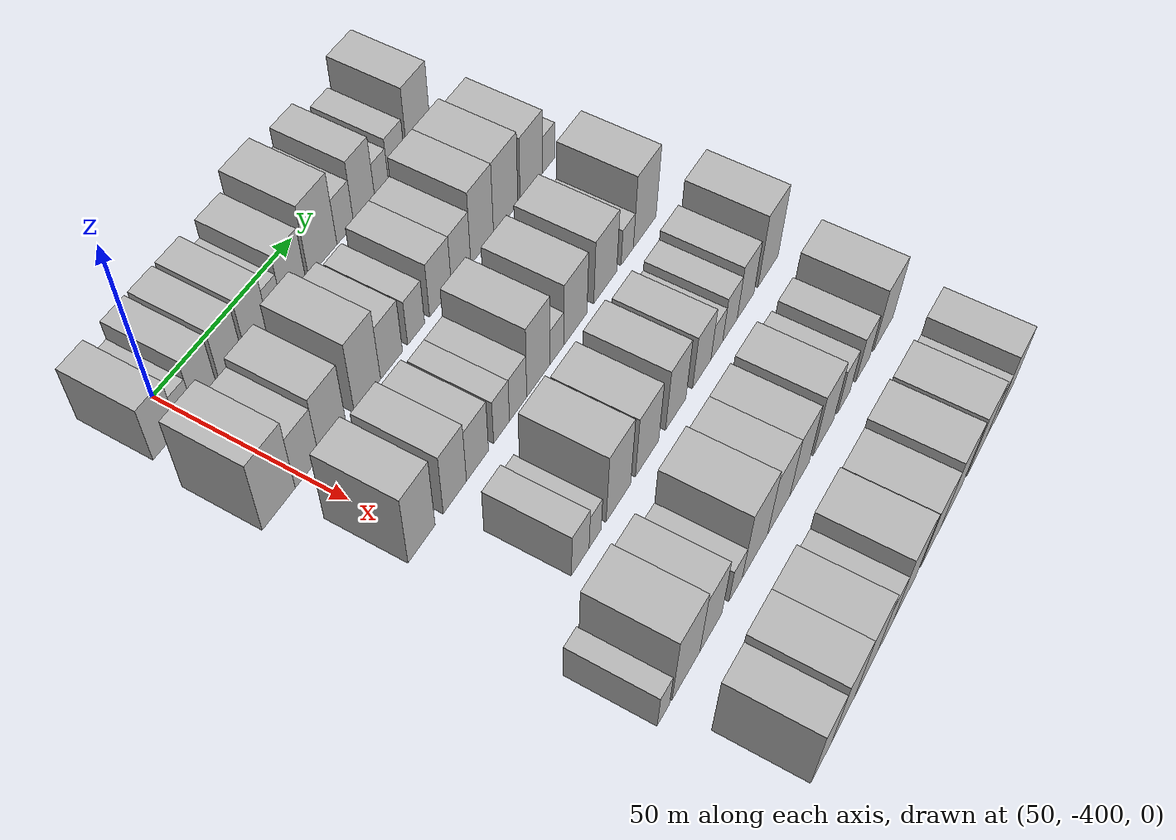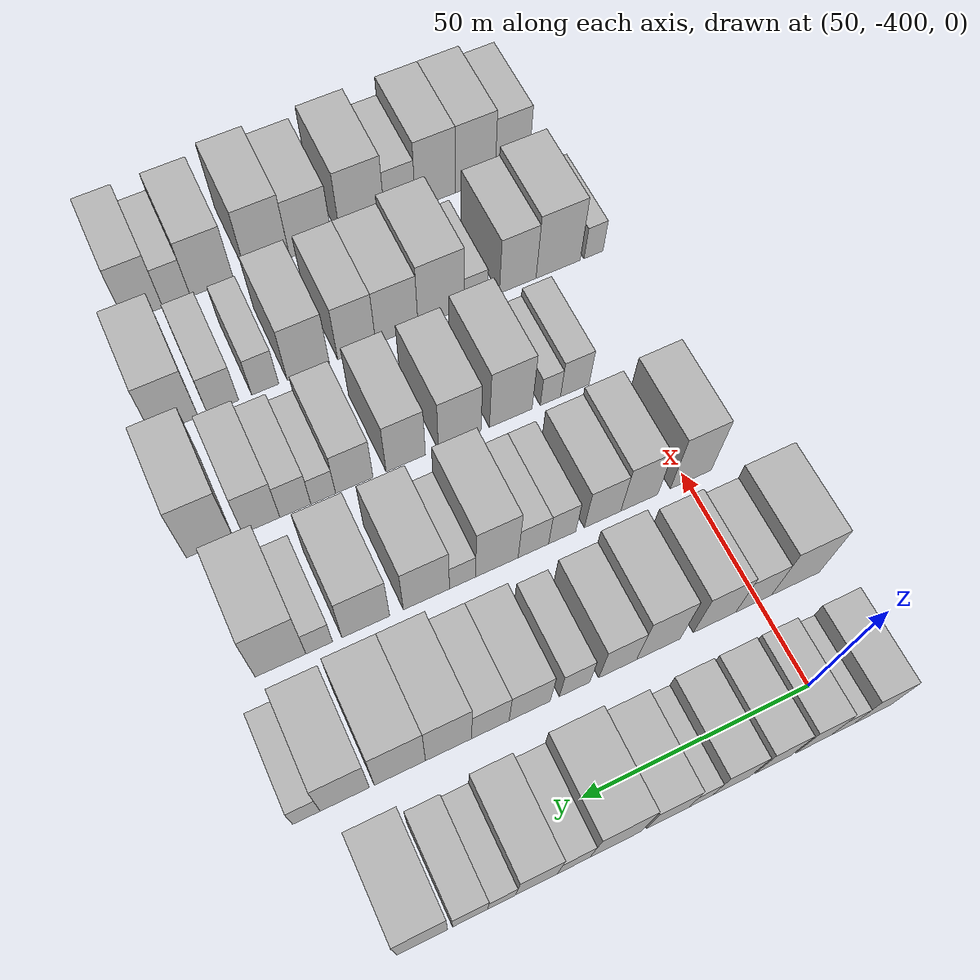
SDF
<sdf version="1.6">
 <world name="default">
  <model name="building_12">
   <static>1</static>
   <pose>50.0000 -408.1813 0 0.000000 0.000000 0.000000</pose>
   <link name="link">
    <pose>0 0 9.00 0 0 0</pose>
    <collision name="collision"><geometry><box><size>20.0000 8.3459 18.0000</size></box></geometry></collision>
    <visual name="visual">
     <cast_shadows>0</cast_shadows>
     <geometry><box><size>20.0000 8.3459 18.0000</size></box></geometry>
     <material>
      <script>
       <uri>model://HANNAS_wall/materials/scripts</uri>
       <uri>model://HANNAS_wall/materials/textures</uri>
       <name>vrc/HANNAS_wall</name>
      </script>
     </material>
    </visual>
   </link>
  </model>
  <model name="building_13">
   <static>1</static>
   <pose>50.0000 -401.3410 0 0.000000 0.000000 0.000000</pose>
   <link name="link">
    <pose>0 0 6.00 0 0 0</pose>
    <collision name="collision"><geometry><box><size>20.0000 5.3347 12.0000</size></box></geometry></collision>
    <visual name="visual">
     <cast_shadows>0</cast_shadows>
     <geometry><box><size>20.0000 5.3347 12.0000</size></box></geometry>
     <material>
      <script>
       <uri>model://HANNAS_wall/materials/scripts</uri>
       <uri>model://HANNAS_wall/materials/textures</uri>
       <name>vrc/HANNAS_wall</name>
      </script>
     </material>
    </visual>
   </link>
  </model>
  <model name="building_14">
   <static>1</static>
   <pose>50.0000 -394.7712 0 0.000000 0.000000 0.000000</pose>
   <link name="link">
    <pose>0 0 9.00 0 0 0</pose>
    <collision name="collision"><geometry><box><size>20.0000 7.8048 18.0000</size></box></geometry></collision>
    <visual name="visual">
     <cast_shadows>0</cast_shadows>
     <geometry><box><size>20.0000 7.8048 18.0000</size></box></geometry>
     <material>
      <script>
       <uri>model://HANNAS_wall/materials/scripts</uri>
       <uri>model://HANNAS_wall/materials/textures</uri>
       <name>vrc/HANNAS_wall</name>
      </script>
     </material>
    </visual>
   </link>
  </model>
  <model name="building_15">
   <static>1</static>
   <pose>50.0000 -385.8586 0 0.000000 0.000000 0.000000</pose>
   <link name="link">
    <pose>0 0 9.00 0 0 0</pose>
    <collision name="collision"><geometry><box><size>20.0000 8.0204 18.0000</size></box></geometry></collision>
    <visual name="visual">
     <cast_shadows>0</cast_shadows>
     <geometry><box><size>20.0000 8.0204 18.0000</size></box></geometry>
     <material>
      <script>
       <uri>model://HANNAS_wall/materials/scripts</uri>
       <uri>model://HANNAS_wall/materials/textures</uri>
       <name>vrc/HANNAS_wall</name>
      </script>
     </material>
    </visual>
   </link>
  </model>
  <model name="building_16">
   <static>1</static>
   <pose>50.0000 -376.7009 0 0.000000 0.000000 0.000000</pose>
   <link name="link">
    <pose>0 0 9.00 0 0 0</pose>
    <collision name="collision"><geometry><box><size>20.0000 8.2950 18.0000</size></box></geometry></collision>
    <visual name="visual">
     <cast_shadows>0</cast_shadows>
     <geometry><box><size>20.0000 8.2950 18.0000</size></box></geometry>
     <material>
      <script>
       <uri>model://HANNAS_wall/materials/scripts</uri>
       <uri>model://HANNAS_wall/materials/textures</uri>
       <name>vrc/HANNAS_wall</name>
      </script>
     </material>
    </visual>
   </link>
  </model>
  <model name="building_17">
   <static>1</static>
   <pose>50.0000 -369.9493 0 0.000000 0.000000 0.000000</pose>
   <link name="link">
    <pose>0 0 6.00 0 0 0</pose>
    <collision name="collision"><geometry><box><size>20.0000 5.2081 12.0000</size></box></geometry></collision>
    <visual name="visual">
     <cast_shadows>0</cast_shadows>
     <geometry><box><size>20.0000 5.2081 12.0000</size></box></geometry>
     <material>
      <script>
       <uri>model://HANNAS_wall/materials/scripts</uri>
       <uri>model://HANNAS_wall/materials/textures</uri>
       <name>vrc/HANNAS_wall</name>
      </script>
     </material>
    </visual>
   </link>
  </model>
  <model name="building_18">
   <static>1</static>
   <pose>50.0000 -362.8617 0 0.000000 0.000000 0.000000</pose>
   <link name="link">
    <pose>0 0 9.00 0 0 0</pose>
    <collision name="collision"><geometry><box><size>20.0000 8.9670 18.0000</size></box></geometry></collision>
    <visual name="visual">
     <cast_shadows>0</cast_shadows>
     <geometry><box><size>20.0000 8.9670 18.0000</size></box></geometry>
     <material>
      <script>
       <uri>model://HANNAS_wall/materials/scripts</uri>
       <uri>model://HANNAS_wall/materials/textures</uri>
       <name>vrc/HANNAS_wall</name>
      </script>
     </material>
    </visual>
   </link>
  </model>
  <model name="building_19">
   <static>1</static>
   <pose>50.0000 -351.8949 0 0.000000 0.000000 0.000000</pose>
   <link name="link">
    <pose>0 0 12.00 0 0 0</pose>
    <collision name="collision"><geometry><box><size>20.0000 10.9666 24.0000</size></box></geometry></collision>
    <visual name="visual">
     <cast_shadows>0</cast_shadows>
     <geometry><box><size>20.0000 10.9666 24.0000</size></box></geometry>
     <material>
      <script>
       <uri>model://HANNAS_wall/materials/scripts</uri>
       <uri>model://HANNAS_wall/materials/textures</uri>
       <name>vrc/HANNAS_wall</name>
      </script>
     </material>
    </visual>
   </link>
  </model>
  <model name="building_20">
   <static>1</static>
   <pose>50.0000 -343.0406 0 0.000000 0.000000 0.000000</pose>
   <link name="link">
    <pose>0 0 7.50 0 0 0</pose>
    <collision name="collision"><geometry><box><size>20.0000 6.7419 15.0000</size></box></geometry></collision>
    <visual name="visual">
     <cast_shadows>0</cast_shadows>
     <geometry><box><size>20.0000 6.7419 15.0000</size></box></geometry>
     <material>
      <script>
       <uri>model://HANNAS_wall/materials/scripts</uri>
       <uri>model://HANNAS_wall/materials/textures</uri>
       <name>vrc/HANNAS_wall</name>
      </script>
     </material>
    </visual>
   </link>
  </model>
  <model name="building_21">
   <static>1</static>
   <pose>50.0000 -335.3861 0 0.000000 0.000000 0.000000</pose>
   <link name="link">
    <pose>0 0 10.50 0 0 0</pose>
    <collision name="collision"><geometry><box><size>20.0000 8.5670 21.0000</size></box></geometry></collision>
    <visual name="visual">
     <cast_shadows>0</cast_shadows>
     <geometry><box><size>20.0000 8.5670 21.0000</size></box></geometry>
     <material>
      <script>
       <uri>model://HANNAS_wall/materials/scripts</uri>
       <uri>model://HANNAS_wall/materials/textures</uri>
       <name>vrc/HANNAS_wall</name>
      </script>
     </material>
    </visual>
   </link>
  </model>
  <model name="building_22">
   <static>1</static>
   <pose>50.0000 -328.2795 0 0.000000 0.000000 0.000000</pose>
   <link name="link">
    <pose>0 0 6.00 0 0 0</pose>
    <collision name="collision"><geometry><box><size>20.0000 5.6461 12.0000</size></box></geometry></collision>
    <visual name="visual">
     <cast_shadows>0</cast_shadows>
     <geometry><box><size>20.0000 5.6461 12.0000</size></box></geometry>
     <material>
      <script>
       <uri>model://HANNAS_wall/materials/scripts</uri>
       <uri>model://HANNAS_wall/materials/textures</uri>
       <name>vrc/HANNAS_wall</name>
      </script>
     </material>
    </visual>
   </link>
  </model>
  <model name="building_23">
   <static>1</static>
   <pose>50.0000 -321.9365 0 0.000000 0.000000 0.000000</pose>
   <link name="link">
    <pose>0 0 7.50 0 0 0</pose>
    <collision name="collision"><geometry><box><size>20.0000 7.0399 15.0000</size></box></geometry></collision>
    <visual name="visual">
     <cast_shadows>0</cast_shadows>
     <geometry><box><size>20.0000 7.0399 15.0000</size></box></geometry>
     <material>
      <script>
       <uri>model://HANNAS_wall/materials/scripts</uri>
       <uri>model://HANNAS_wall/materials/textures</uri>
       <name>vrc/HANNAS_wall</name>
      </script>
     </material>
    </visual>
   </link>
  </model>
  <model name="building_24">
   <static>1</static>
   <pose>50.0000 -312.4300 0 0.000000 0.000000 0.000000</pose>
   <link name="link">
    <pose>0 0 12.00 0 0 0</pose>
    <collision name="collision"><geometry><box><size>20.0000 9.9732 24.0000</size></box></geometry></collision>
    <visual name="visual">
     <cast_shadows>0</cast_shadows>
     <geometry><box><size>20.0000 9.9732 24.0000</size></box></geometry>
     <material>
      <script>
       <uri>model://HANNAS_wall/materials/scripts</uri>
       <uri>model://HANNAS_wall/materials/textures</uri>
       <name>vrc/HANNAS_wall</name>
      </script>
     </material>
    </visual>
   </link>
  </model>
  <model name="building_125">
   <static>1</static>
   <pose>79.0000 -408.7223 0 0.000000 0.000000 0.000000</pose>
   <link name="link">
    <pose>0 0 12.00 0 0 0</pose>
    <collision name="collision"><geometry><box><size>20.0000 11.2983 24.0000</size></box></geometry></collision>
    <visual name="visual">
     <cast_shadows>0</cast_shadows>
     <geometry><box><size>20.0000 11.2983 24.0000</size></box></geometry>
     <material>
      <script>
       <uri>model://HANNAS_wall/materials/scripts</uri>
       <uri>model://HANNAS_wall/materials/textures</uri>
       <name>vrc/HANNAS_wall</name>
      </script>
     </material>
    </visual>
   </link>
  </model>
  <model name="building_126">
   <static>1</static>
   <pose>79.0000 -398.9038 0 0.000000 0.000000 0.000000</pose>
   <link name="link">
    <pose>0 0 9.00 0 0 0</pose>
    <collision name="collision"><geometry><box><size>20.0000 8.3386 18.0000</size></box></geometry></collision>
    <visual name="visual">
     <cast_shadows>0</cast_shadows>
     <geometry><box><size>20.0000 8.3386 18.0000</size></box></geometry>
     <material>
      <script>
       <uri>model://HANNAS_wall/materials/scripts</uri>
       <uri>model://HANNAS_wall/materials/textures</uri>
       <name>vrc/HANNAS_wall</name>
      </script>
     </material>
    </visual>
   </link>
  </model>
  <model name="building_127">
   <static>1</static>
   <pose>79.0000 -389.8600 0 0.000000 0.000000 0.000000</pose>
   <link name="link">
    <pose>0 0 10.50 0 0 0</pose>
    <collision name="collision"><geometry><box><size>20.0000 9.7490 21.0000</size></box></geometry></collision>
    <visual name="visual">
     <cast_shadows>0</cast_shadows>
     <geometry><box><size>20.0000 9.7490 21.0000</size></box></geometry>
     <material>
      <script>
       <uri>model://HANNAS_wall/materials/scripts</uri>
       <uri>model://HANNAS_wall/materials/textures</uri>
       <name>vrc/HANNAS_wall</name>
      </script>
     </material>
    </visual>
   </link>
  </model>
  <model name="building_128">
   <static>1</static>
   <pose>79.0000 -377.0594 0 0.000000 0.000000 0.000000</pose>
   <link name="link">
    <pose>0 0 12.00 0 0 0</pose>
    <collision name="collision"><geometry><box><size>20.0000 9.8522 24.0000</size></box></geometry></collision>
    <visual name="visual">
     <cast_shadows>0</cast_shadows>
     <geometry><box><size>20.0000 9.8522 24.0000</size></box></geometry>
     <material>
      <script>
       <uri>model://HANNAS_wall/materials/scripts</uri>
       <uri>model://HANNAS_wall/materials/textures</uri>
       <name>vrc/HANNAS_wall</name>
      </script>
     </material>
    </visual>
   </link>
  </model>
  <model name="building_129">
   <static>1</static>
   <pose>79.0000 -367.9258 0 0.000000 0.000000 0.000000</pose>
   <link name="link">
    <pose>0 0 9.00 0 0 0</pose>
    <collision name="collision"><geometry><box><size>20.0000 8.4150 18.0000</size></box></geometry></collision>
    <visual name="visual">
     <cast_shadows>0</cast_shadows>
     <geometry><box><size>20.0000 8.4150 18.0000</size></box></geometry>
     <material>
      <script>
       <uri>model://HANNAS_wall/materials/scripts</uri>
       <uri>model://HANNAS_wall/materials/textures</uri>
       <name>vrc/HANNAS_wall</name>
      </script>
     </material>
    </visual>
   </link>
  </model>
  <model name="building_130">
   <static>1</static>
   <pose>79.0000 -358.3705 0 0.000000 0.000000 0.000000</pose>
   <link name="link">
    <pose>0 0 7.50 0 0 0</pose>
    <collision name="collision"><geometry><box><size>20.0000 6.6957 15.0000</size></box></geometry></collision>
    <visual name="visual">
     <cast_shadows>0</cast_shadows>
     <geometry><box><size>20.0000 6.6957 15.0000</size></box></geometry>
     <material>
      <script>
       <uri>model://HANNAS_wall/materials/scripts</uri>
       <uri>model://HANNAS_wall/materials/textures</uri>
       <name>vrc/HANNAS_wall</name>
      </script>
     </material>
    </visual>
   </link>
  </model>
  <model name="building_131">
   <static>1</static>
   <pose>79.0000 -348.5565 0 0.000000 0.000000 0.000000</pose>
   <link name="link">
    <pose>0 0 9.00 0 0 0</pose>
    <collision name="collision"><geometry><box><size>20.0000 8.9323 18.0000</size></box></geometry></collision>
    <visual name="visual">
     <cast_shadows>0</cast_shadows>
     <geometry><box><size>20.0000 8.9323 18.0000</size></box></geometry>
     <material>
      <script>
       <uri>model://HANNAS_wall/materials/scripts</uri>
       <uri>model://HANNAS_wall/materials/textures</uri>
       <name>vrc/HANNAS_wall</name>
      </script>
     </material>
    </visual>
   </link>
  </model>
  <model name="building_132">
   <static>1</static>
   <pose>79.0000 -340.0822 0 0.000000 0.000000 0.000000</pose>
   <link name="link">
    <pose>0 0 9.00 0 0 0</pose>
    <collision name="collision"><geometry><box><size>20.0000 8.0163 18.0000</size></box></geometry></collision>
    <visual name="visual">
     <cast_shadows>0</cast_shadows>
     <geometry><box><size>20.0000 8.0163 18.0000</size></box></geometry>
     <material>
      <script>
       <uri>model://HANNAS_wall/materials/scripts</uri>
       <uri>model://HANNAS_wall/materials/textures</uri>
       <name>vrc/HANNAS_wall</name>
      </script>
     </material>
    </visual>
   </link>
  </model>
  <model name="building_133">
   <static>1</static>
   <pose>79.0000 -331.2280 0 0.000000 0.000000 0.000000</pose>
   <link name="link">
    <pose>0 0 12.00 0 0 0</pose>
    <collision name="collision"><geometry><box><size>20.0000 9.6919 24.0000</size></box></geometry></collision>
    <visual name="visual">
     <cast_shadows>0</cast_shadows>
     <geometry><box><size>20.0000 9.6919 24.0000</size></box></geometry>
     <material>
      <script>
       <uri>model://HANNAS_wall/materials/scripts</uri>
       <uri>model://HANNAS_wall/materials/textures</uri>
       <name>vrc/HANNAS_wall</name>
      </script>
     </material>
    </visual>
   </link>
  </model>
  <model name="building_134">
   <static>1</static>
   <pose>79.0000 -321.0541 0 0.000000 0.000000 0.000000</pose>
   <link name="link">
    <pose>0 0 12.00 0 0 0</pose>
    <collision name="collision"><geometry><box><size>20.0000 10.6560 24.0000</size></box></geometry></collision>
    <visual name="visual">
     <cast_shadows>0</cast_shadows>
     <geometry><box><size>20.0000 10.6560 24.0000</size></box></geometry>
     <material>
      <script>
       <uri>model://HANNAS_wall/materials/scripts</uri>
       <uri>model://HANNAS_wall/materials/textures</uri>
       <name>vrc/HANNAS_wall</name>
      </script>
     </material>
    </visual>
   </link>
  </model>
  <model name="building_135">
   <static>1</static>
   <pose>79.0000 -309.6867 0 0.000000 0.000000 0.000000</pose>
   <link name="link">
    <pose>0 0 10.50 0 0 0</pose>
    <collision name="collision"><geometry><box><size>20.0000 10.0787 21.0000</size></box></geometry></collision>
    <visual name="visual">
     <cast_shadows>0</cast_shadows>
     <geometry><box><size>20.0000 10.0787 21.0000</size></box></geometry>
     <material>
      <script>
       <uri>model://HANNAS_wall/materials/scripts</uri>
       <uri>model://HANNAS_wall/materials/textures</uri>
       <name>vrc/HANNAS_wall</name>
      </script>
     </material>
    </visual>
   </link>
  </model>
  <model name="building_136">
   <static>1</static>
   <pose>79.0000 -301.8614 0 0.000000 0.000000 0.000000</pose>
   <link name="link">
    <pose>0 0 6.00 0 0 0</pose>
    <collision name="collision"><geometry><box><size>20.0000 5.5719 12.0000</size></box></geometry></collision>
    <visual name="visual">
     <cast_shadows>0</cast_shadows>
     <geometry><box><size>20.0000 5.5719 12.0000</size></box></geometry>
     <material>
      <script>
       <uri>model://HANNAS_wall/materials/scripts</uri>
       <uri>model://HANNAS_wall/materials/textures</uri>
       <name>vrc/HANNAS_wall</name>
      </script>
     </material>
    </visual>
   </link>
  </model>
  <model name="building_237">
   <static>1</static>
   <pose>108.0000 -400.9648 0 0.000000 0.000000 0.000000</pose>
   <link name="link">
    <pose>0 0 12.00 0 0 0</pose>
    <collision name="collision"><geometry><box><size>20.0000 9.8515 24.0000</size></box></geometry></collision>
    <visual name="visual">
     <cast_shadows>0</cast_shadows>
     <geometry><box><size>20.0000 9.8515 24.0000</size></box></geometry>
     <material>
      <script>
       <uri>model://HANNAS_wall/materials/scripts</uri>
       <uri>model://HANNAS_wall/materials/textures</uri>
       <name>vrc/HANNAS_wall</name>
      </script>
     </material>
    </visual>
   </link>
  </model>
  <model name="building_238">
   <static>1</static>
   <pose>108.0000 -388.6514 0 0.000000 0.000000 0.000000</pose>
   <link name="link">
    <pose>0 0 10.50 0 0 0</pose>
    <collision name="collision"><geometry><box><size>20.0000 8.7754 21.0000</size></box></geometry></collision>
    <visual name="visual">
     <cast_shadows>0</cast_shadows>
     <geometry><box><size>20.0000 8.7754 21.0000</size></box></geometry>
     <material>
      <script>
       <uri>model://HANNAS_wall/materials/scripts</uri>
       <uri>model://HANNAS_wall/materials/textures</uri>
       <name>vrc/HANNAS_wall</name>
      </script>
     </material>
    </visual>
   </link>
  </model>
  <model name="building_239">
   <static>1</static>
   <pose>108.0000 -380.0092 0 0.000000 0.000000 0.000000</pose>
   <link name="link">
    <pose>0 0 9.00 0 0 0</pose>
    <collision name="collision"><geometry><box><size>20.0000 8.5089 18.0000</size></box></geometry></collision>
    <visual name="visual">
     <cast_shadows>0</cast_shadows>
     <geometry><box><size>20.0000 8.5089 18.0000</size></box></geometry>
     <material>
      <script>
       <uri>model://HANNAS_wall/materials/scripts</uri>
       <uri>model://HANNAS_wall/materials/textures</uri>
       <name>vrc/HANNAS_wall</name>
      </script>
     </material>
    </visual>
   </link>
  </model>
  <model name="building_240">
   <static>1</static>
   <pose>108.0000 -370.6069 0 0.000000 0.000000 0.000000</pose>
   <link name="link">
    <pose>0 0 7.50 0 0 0</pose>
    <collision name="collision"><geometry><box><size>20.0000 6.2959 15.0000</size></box></geometry></collision>
    <visual name="visual">
     <cast_shadows>0</cast_shadows>
     <geometry><box><size>20.0000 6.2959 15.0000</size></box></geometry>
     <material>
      <script>
       <uri>model://HANNAS_wall/materials/scripts</uri>
       <uri>model://HANNAS_wall/materials/textures</uri>
       <name>vrc/HANNAS_wall</name>
      </script>
     </material>
    </visual>
   </link>
  </model>
  <model name="building_241">
   <static>1</static>
   <pose>108.0000 -363.9715 0 0.000000 0.000000 0.000000</pose>
   <link name="link">
    <pose>0 0 7.50 0 0 0</pose>
    <collision name="collision"><geometry><box><size>20.0000 6.9749 15.0000</size></box></geometry></collision>
    <visual name="visual">
     <cast_shadows>0</cast_shadows>
     <geometry><box><size>20.0000 6.9749 15.0000</size></box></geometry>
     <material>
      <script>
       <uri>model://HANNAS_wall/materials/scripts</uri>
       <uri>model://HANNAS_wall/materials/textures</uri>
       <name>vrc/HANNAS_wall</name>
      </script>
     </material>
    </visual>
   </link>
  </model>
  <model name="building_242">
   <static>1</static>
   <pose>108.0000 -355.6489 0 0.000000 0.000000 0.000000</pose>
   <link name="link">
    <pose>0 0 12.00 0 0 0</pose>
    <collision name="collision"><geometry><box><size>20.0000 9.6704 24.0000</size></box></geometry></collision>
    <visual name="visual">
     <cast_shadows>0</cast_shadows>
     <geometry><box><size>20.0000 9.6704 24.0000</size></box></geometry>
     <material>
      <script>
       <uri>model://HANNAS_wall/materials/scripts</uri>
       <uri>model://HANNAS_wall/materials/textures</uri>
       <name>vrc/HANNAS_wall</name>
      </script>
     </material>
    </visual>
   </link>
  </model>
  <model name="building_243">
   <static>1</static>
   <pose>108.0000 -347.9150 0 0.000000 0.000000 0.000000</pose>
   <link name="link">
    <pose>0 0 6.00 0 0 0</pose>
    <collision name="collision"><geometry><box><size>20.0000 5.7973 12.0000</size></box></geometry></collision>
    <visual name="visual">
     <cast_shadows>0</cast_shadows>
     <geometry><box><size>20.0000 5.7973 12.0000</size></box></geometry>
     <material>
      <script>
       <uri>model://HANNAS_wall/materials/scripts</uri>
       <uri>model://HANNAS_wall/materials/textures</uri>
       <name>vrc/HANNAS_wall</name>
      </script>
     </material>
    </visual>
   </link>
  </model>
  <model name="building_244">
   <static>1</static>
   <pose>108.0000 -339.9219 0 0.000000 0.000000 0.000000</pose>
   <link name="link">
    <pose>0 0 10.50 0 0 0</pose>
    <collision name="collision"><geometry><box><size>20.0000 10.1889 21.0000</size></box></geometry></collision>
    <visual name="visual">
     <cast_shadows>0</cast_shadows>
     <geometry><box><size>20.0000 10.1889 21.0000</size></box></geometry>
     <material>
      <script>
       <uri>model://HANNAS_wall/materials/scripts</uri>
       <uri>model://HANNAS_wall/materials/textures</uri>
       <name>vrc/HANNAS_wall</name>
      </script>
     </material>
    </visual>
   </link>
  </model>
  <model name="building_245">
   <static>1</static>
   <pose>108.0000 -326.6352 0 0.000000 0.000000 0.000000</pose>
   <link name="link">
    <pose>0 0 10.50 0 0 0</pose>
    <collision name="collision"><geometry><box><size>20.0000 10.3846 21.0000</size></box></geometry></collision>
    <visual name="visual">
     <cast_shadows>0</cast_shadows>
     <geometry><box><size>20.0000 10.3846 21.0000</size></box></geometry>
     <material>
      <script>
       <uri>model://HANNAS_wall/materials/scripts</uri>
       <uri>model://HANNAS_wall/materials/textures</uri>
       <name>vrc/HANNAS_wall</name>
      </script>
     </material>
    </visual>
   </link>
  </model>
  <model name="building_246">
   <static>1</static>
   <pose>108.0000 -316.5867 0 0.000000 0.000000 0.000000</pose>
   <link name="link">
    <pose>0 0 6.00 0 0 0</pose>
    <collision name="collision"><geometry><box><size>20.0000 5.7122 12.0000</size></box></geometry></collision>
    <visual name="visual">
     <cast_shadows>0</cast_shadows>
     <geometry><box><size>20.0000 5.7122 12.0000</size></box></geometry>
     <material>
      <script>
       <uri>model://HANNAS_wall/materials/scripts</uri>
       <uri>model://HANNAS_wall/materials/textures</uri>
       <name>vrc/HANNAS_wall</name>
      </script>
     </material>
    </visual>
   </link>
  </model>
  <model name="building_247">
   <static>1</static>
   <pose>108.0000 -308.3567 0 0.000000 0.000000 0.000000</pose>
   <link name="link">
    <pose>0 0 12.00 0 0 0</pose>
    <collision name="collision"><geometry><box><size>20.0000 10.7478 24.0000</size></box></geometry></collision>
    <visual name="visual">
     <cast_shadows>0</cast_shadows>
     <geometry><box><size>20.0000 10.7478 24.0000</size></box></geometry>
     <material>
      <script>
       <uri>model://HANNAS_wall/materials/scripts</uri>
       <uri>model://HANNAS_wall/materials/textures</uri>
       <name>vrc/HANNAS_wall</name>
      </script>
     </material>
    </visual>
   </link>
  </model>
  <model name="building_348">
   <static>1</static>
   <pose>137.0000 -388.6480 0 0.000000 0.000000 0.000000</pose>
   <link name="link">
    <pose>0 0 7.50 0 0 0</pose>
    <collision name="collision"><geometry><box><size>20.0000 6.9979 15.0000</size></box></geometry></collision>
    <visual name="visual">
     <cast_shadows>0</cast_shadows>
     <geometry><box><size>20.0000 6.9979 15.0000</size></box></geometry>
     <material>
      <script>
       <uri>model://HANNAS_wall/materials/scripts</uri>
       <uri>model://HANNAS_wall/materials/textures</uri>
       <name>vrc/HANNAS_wall</name>
      </script>
     </material>
    </visual>
   </link>
  </model>
  <model name="building_349">
   <static>1</static>
   <pose>137.0000 -382.7102 0 0.000000 0.000000 0.000000</pose>
   <link name="link">
    <pose>0 0 6.00 0 0 0</pose>
    <collision name="collision"><geometry><box><size>20.0000 4.8775 12.0000</size></box></geometry></collision>
    <visual name="visual">
     <cast_shadows>0</cast_shadows>
     <geometry><box><size>20.0000 4.8775 12.0000</size></box></geometry>
     <material>
      <script>
       <uri>model://HANNAS_wall/materials/scripts</uri>
       <uri>model://HANNAS_wall/materials/textures</uri>
       <name>vrc/HANNAS_wall</name>
      </script>
     </material>
    </visual>
   </link>
  </model>
  <model name="building_350">
   <static>1</static>
   <pose>137.0000 -373.1692 0 0.000000 0.000000 0.000000</pose>
   <link name="link">
    <pose>0 0 12.00 0 0 0</pose>
    <collision name="collision"><geometry><box><size>20.0000 10.2045 24.0000</size></box></geometry></collision>
    <visual name="visual">
     <cast_shadows>0</cast_shadows>
     <geometry><box><size>20.0000 10.2045 24.0000</size></box></geometry>
     <material>
      <script>
       <uri>model://HANNAS_wall/materials/scripts</uri>
       <uri>model://HANNAS_wall/materials/textures</uri>
       <name>vrc/HANNAS_wall</name>
      </script>
     </material>
    </visual>
   </link>
  </model>
  <model name="building_351">
   <static>1</static>
   <pose>137.0000 -361.0492 0 0.000000 0.000000 0.000000</pose>
   <link name="link">
    <pose>0 0 10.50 0 0 0</pose>
    <collision name="collision"><geometry><box><size>20.0000 10.0356 21.0000</size></box></geometry></collision>
    <visual name="visual">
     <cast_shadows>0</cast_shadows>
     <geometry><box><size>20.0000 10.0356 21.0000</size></box></geometry>
     <material>
      <script>
       <uri>model://HANNAS_wall/materials/scripts</uri>
       <uri>model://HANNAS_wall/materials/textures</uri>
       <name>vrc/HANNAS_wall</name>
      </script>
     </material>
    </visual>
   </link>
  </model>
  <model name="building_352">
   <static>1</static>
   <pose>137.0000 -348.4777 0 0.000000 0.000000 0.000000</pose>
   <link name="link">
    <pose>0 0 10.50 0 0 0</pose>
    <collision name="collision"><geometry><box><size>20.0000 9.1074 21.0000</size></box></geometry></collision>
    <visual name="visual">
     <cast_shadows>0</cast_shadows>
     <geometry><box><size>20.0000 9.1074 21.0000</size></box></geometry>
     <material>
      <script>
       <uri>model://HANNAS_wall/materials/scripts</uri>
       <uri>model://HANNAS_wall/materials/textures</uri>
       <name>vrc/HANNAS_wall</name>
      </script>
     </material>
    </visual>
   </link>
  </model>
  <model name="building_353">
   <static>1</static>
   <pose>137.0000 -336.6565 0 0.000000 0.000000 0.000000</pose>
   <link name="link">
    <pose>0 0 9.00 0 0 0</pose>
    <collision name="collision"><geometry><box><size>20.0000 8.5350 18.0000</size></box></geometry></collision>
    <visual name="visual">
     <cast_shadows>0</cast_shadows>
     <geometry><box><size>20.0000 8.5350 18.0000</size></box></geometry>
     <material>
      <script>
       <uri>model://HANNAS_wall/materials/scripts</uri>
       <uri>model://HANNAS_wall/materials/textures</uri>
       <name>vrc/HANNAS_wall</name>
      </script>
     </material>
    </visual>
   </link>
  </model>
  <model name="building_354">
   <static>1</static>
   <pose>137.0000 -329.5993 0 0.000000 0.000000 0.000000</pose>
   <link name="link">
    <pose>0 0 6.00 0 0 0</pose>
    <collision name="collision"><geometry><box><size>20.0000 5.5795 12.0000</size></box></geometry></collision>
    <visual name="visual">
     <cast_shadows>0</cast_shadows>
     <geometry><box><size>20.0000 5.5795 12.0000</size></box></geometry>
     <material>
      <script>
       <uri>model://HANNAS_wall/materials/scripts</uri>
       <uri>model://HANNAS_wall/materials/textures</uri>
       <name>vrc/HANNAS_wall</name>
      </script>
     </material>
    </visual>
   </link>
  </model>
  <model name="building_355">
   <static>1</static>
   <pose>137.0000 -323.3493 0 0.000000 0.000000 0.000000</pose>
   <link name="link">
    <pose>0 0 7.50 0 0 0</pose>
    <collision name="collision"><geometry><box><size>20.0000 6.9205 15.0000</size></box></geometry></collision>
    <visual name="visual">
     <cast_shadows>0</cast_shadows>
     <geometry><box><size>20.0000 6.9205 15.0000</size></box></geometry>
     <material>
      <script>
       <uri>model://HANNAS_wall/materials/scripts</uri>
       <uri>model://HANNAS_wall/materials/textures</uri>
       <name>vrc/HANNAS_wall</name>
      </script>
     </material>
    </visual>
   </link>
  </model>
  <model name="building_356">
   <static>1</static>
   <pose>137.0000 -315.7426 0 0.000000 0.000000 0.000000</pose>
   <link name="link">
    <pose>0 0 9.00 0 0 0</pose>
    <collision name="collision"><geometry><box><size>20.0000 8.2930 18.0000</size></box></geometry></collision>
    <visual name="visual">
     <cast_shadows>0</cast_shadows>
     <geometry><box><size>20.0000 8.2930 18.0000</size></box></geometry>
     <material>
      <script>
       <uri>model://HANNAS_wall/materials/scripts</uri>
       <uri>model://HANNAS_wall/materials/textures</uri>
       <name>vrc/HANNAS_wall</name>
      </script>
     </material>
    </visual>
   </link>
  </model>
  <model name="building_357">
   <static>1</static>
   <pose>137.0000 -304.4735 0 0.000000 0.000000 0.000000</pose>
   <link name="link">
    <pose>0 0 12.00 0 0 0</pose>
    <collision name="collision"><geometry><box><size>20.0000 10.2454 24.0000</size></box></geometry></collision>
    <visual name="visual">
     <cast_shadows>0</cast_shadows>
     <geometry><box><size>20.0000 10.2454 24.0000</size></box></geometry>
     <material>
      <script>
       <uri>model://HANNAS_wall/materials/scripts</uri>
       <uri>model://HANNAS_wall/materials/textures</uri>
       <name>vrc/HANNAS_wall</name>
      </script>
     </material>
    </visual>
   </link>
  </model>
  <model name="building_461">
   <static>1</static>
   <pose>166.0000 -408.5825 0 0.000000 0.000000 0.000000</pose>
   <link name="link">
    <pose>0 0 6.00 0 0 0</pose>
    <collision name="collision"><geometry><box><size>20.0000 4.8622 12.0000</size></box></geometry></collision>
    <visual name="visual">
     <cast_shadows>0</cast_shadows>
     <geometry><box><size>20.0000 4.8622 12.0000</size></box></geometry>
     <material>
      <script>
       <uri>model://HANNAS_wall/materials/scripts</uri>
       <uri>model://HANNAS_wall/materials/textures</uri>
       <name>vrc/HANNAS_wall</name>
      </script>
     </material>
    </visual>
   </link>
  </model>
  <model name="building_462">
   <static>1</static>
   <pose>166.0000 -399.5165 0 0.000000 0.000000 0.000000</pose>
   <link name="link">
    <pose>0 0 12.00 0 0 0</pose>
    <collision name="collision"><geometry><box><size>20.0000 11.2697 24.0000</size></box></geometry></collision>
    <visual name="visual">
     <cast_shadows>0</cast_shadows>
     <geometry><box><size>20.0000 11.2697 24.0000</size></box></geometry>
     <material>
      <script>
       <uri>model://HANNAS_wall/materials/scripts</uri>
       <uri>model://HANNAS_wall/materials/textures</uri>
       <name>vrc/HANNAS_wall</name>
      </script>
     </material>
    </visual>
   </link>
  </model>
  <model name="building_463">
   <static>1</static>
   <pose>166.0000 -389.2660 0 0.000000 0.000000 0.000000</pose>
   <link name="link">
    <pose>0 0 10.50 0 0 0</pose>
    <collision name="collision"><geometry><box><size>20.0000 9.2314 21.0000</size></box></geometry></collision>
    <visual name="visual">
     <cast_shadows>0</cast_shadows>
     <geometry><box><size>20.0000 9.2314 21.0000</size></box></geometry>
     <material>
      <script>
       <uri>model://HANNAS_wall/materials/scripts</uri>
       <uri>model://HANNAS_wall/materials/textures</uri>
       <name>vrc/HANNAS_wall</name>
      </script>
     </material>
    </visual>
   </link>
  </model>
  <model name="building_464">
   <static>1</static>
   <pose>166.0000 -378.7809 0 0.000000 0.000000 0.000000</pose>
   <link name="link">
    <pose>0 0 6.00 0 0 0</pose>
    <collision name="collision"><geometry><box><size>20.0000 5.7388 12.0000</size></box></geometry></collision>
    <visual name="visual">
     <cast_shadows>0</cast_shadows>
     <geometry><box><size>20.0000 5.7388 12.0000</size></box></geometry>
     <material>
      <script>
       <uri>model://HANNAS_wall/materials/scripts</uri>
       <uri>model://HANNAS_wall/materials/textures</uri>
       <name>vrc/HANNAS_wall</name>
      </script>
     </material>
    </visual>
   </link>
  </model>
  <model name="building_465">
   <static>1</static>
   <pose>166.0000 -370.2418 0 0.000000 0.000000 0.000000</pose>
   <link name="link">
    <pose>0 0 12.00 0 0 0</pose>
    <collision name="collision"><geometry><box><size>20.0000 11.3394 24.0000</size></box></geometry></collision>
    <visual name="visual">
     <cast_shadows>0</cast_shadows>
     <geometry><box><size>20.0000 11.3394 24.0000</size></box></geometry>
     <material>
      <script>
       <uri>model://HANNAS_wall/materials/scripts</uri>
       <uri>model://HANNAS_wall/materials/textures</uri>
       <name>vrc/HANNAS_wall</name>
      </script>
     </material>
    </visual>
   </link>
  </model>
  <model name="building_466">
   <static>1</static>
   <pose>166.0000 -359.4437 0 0.000000 0.000000 0.000000</pose>
   <link name="link">
    <pose>0 0 10.50 0 0 0</pose>
    <collision name="collision"><geometry><box><size>20.0000 10.2569 21.0000</size></box></geometry></collision>
    <visual name="visual">
     <cast_shadows>0</cast_shadows>
     <geometry><box><size>20.0000 10.2569 21.0000</size></box></geometry>
     <material>
      <script>
       <uri>model://HANNAS_wall/materials/scripts</uri>
       <uri>model://HANNAS_wall/materials/textures</uri>
       <name>vrc/HANNAS_wall</name>
      </script>
     </material>
    </visual>
   </link>
  </model>
  <model name="building_467">
   <static>1</static>
   <pose>166.0000 -349.7670 0 0.000000 0.000000 0.000000</pose>
   <link name="link">
    <pose>0 0 10.50 0 0 0</pose>
    <collision name="collision"><geometry><box><size>20.0000 9.0964 21.0000</size></box></geometry></collision>
    <visual name="visual">
     <cast_shadows>0</cast_shadows>
     <geometry><box><size>20.0000 9.0964 21.0000</size></box></geometry>
     <material>
      <script>
       <uri>model://HANNAS_wall/materials/scripts</uri>
       <uri>model://HANNAS_wall/materials/textures</uri>
       <name>vrc/HANNAS_wall</name>
      </script>
     </material>
    </visual>
   </link>
  </model>
  <model name="building_468">
   <static>1</static>
   <pose>166.0000 -338.2564 0 0.000000 0.000000 0.000000</pose>
   <link name="link">
    <pose>0 0 10.50 0 0 0</pose>
    <collision name="collision"><geometry><box><size>20.0000 9.9249 21.0000</size></box></geometry></collision>
    <visual name="visual">
     <cast_shadows>0</cast_shadows>
     <geometry><box><size>20.0000 9.9249 21.0000</size></box></geometry>
     <material>
      <script>
       <uri>model://HANNAS_wall/materials/scripts</uri>
       <uri>model://HANNAS_wall/materials/textures</uri>
       <name>vrc/HANNAS_wall</name>
      </script>
     </material>
    </visual>
   </link>
  </model>
  <model name="building_469">
   <static>1</static>
   <pose>166.0000 -328.1408 0 0.000000 0.000000 0.000000</pose>
   <link name="link">
    <pose>0 0 7.50 0 0 0</pose>
    <collision name="collision"><geometry><box><size>20.0000 6.3064 15.0000</size></box></geometry></collision>
    <visual name="visual">
     <cast_shadows>0</cast_shadows>
     <geometry><box><size>20.0000 6.3064 15.0000</size></box></geometry>
     <material>
      <script>
       <uri>model://HANNAS_wall/materials/scripts</uri>
       <uri>model://HANNAS_wall/materials/textures</uri>
       <name>vrc/HANNAS_wall</name>
      </script>
     </material>
    </visual>
   </link>
  </model>
  <model name="building_470">
   <static>1</static>
   <pose>166.0000 -318.3599 0 0.000000 0.000000 0.000000</pose>
   <link name="link">
    <pose>0 0 7.50 0 0 0</pose>
    <collision name="collision"><geometry><box><size>20.0000 7.2554 15.0000</size></box></geometry></collision>
    <visual name="visual">
     <cast_shadows>0</cast_shadows>
     <geometry><box><size>20.0000 7.2554 15.0000</size></box></geometry>
     <material>
      <script>
       <uri>model://HANNAS_wall/materials/scripts</uri>
       <uri>model://HANNAS_wall/materials/textures</uri>
       <name>vrc/HANNAS_wall</name>
      </script>
     </material>
    </visual>
   </link>
  </model>
  <model name="building_471">
   <static>1</static>
   <pose>166.0000 -307.5015 0 0.000000 0.000000 0.000000</pose>
   <link name="link">
    <pose>0 0 10.50 0 0 0</pose>
    <collision name="collision"><geometry><box><size>20.0000 10.4615 21.0000</size></box></geometry></collision>
    <visual name="visual">
     <cast_shadows>0</cast_shadows>
     <geometry><box><size>20.0000 10.4615 21.0000</size></box></geometry>
     <material>
      <script>
       <uri>model://HANNAS_wall/materials/scripts</uri>
       <uri>model://HANNAS_wall/materials/textures</uri>
       <name>vrc/HANNAS_wall</name>
      </script>
     </material>
    </visual>
   </link>
  </model>
  <model name="building_566">
   <static>1</static>
   <pose>195.0000 -402.1871 0 0.000000 0.000000 0.000000</pose>
   <link name="link">
    <pose>0 0 10.50 0 0 0</pose>
    <collision name="collision"><geometry><box><size>20.0000 8.9170 21.0000</size></box></geometry></collision>
    <visual name="visual">
     <cast_shadows>0</cast_shadows>
     <geometry><box><size>20.0000 8.9170 21.0000</size></box></geometry>
     <material>
      <script>
       <uri>model://HANNAS_wall/materials/scripts</uri>
       <uri>model://HANNAS_wall/materials/textures</uri>
       <name>vrc/HANNAS_wall</name>
      </script>
     </material>
    </visual>
   </link>
  </model>
  <model name="building_567">
   <static>1</static>
   <pose>195.0000 -392.5963 0 0.000000 0.000000 0.000000</pose>
   <link name="link">
    <pose>0 0 12.00 0 0 0</pose>
    <collision name="collision"><geometry><box><size>20.0000 10.2645 24.0000</size></box></geometry></collision>
    <visual name="visual">
     <cast_shadows>0</cast_shadows>
     <geometry><box><size>20.0000 10.2645 24.0000</size></box></geometry>
     <material>
      <script>
       <uri>model://HANNAS_wall/materials/scripts</uri>
       <uri>model://HANNAS_wall/materials/textures</uri>
       <name>vrc/HANNAS_wall</name>
      </script>
     </material>
    </visual>
   </link>
  </model>
  <model name="building_568">
   <static>1</static>
   <pose>195.0000 -382.3170 0 0.000000 0.000000 0.000000</pose>
   <link name="link">
    <pose>0 0 12.00 0 0 0</pose>
    <collision name="collision"><geometry><box><size>20.0000 10.2943 24.0000</size></box></geometry></collision>
    <visual name="visual">
     <cast_shadows>0</cast_shadows>
     <geometry><box><size>20.0000 10.2943 24.0000</size></box></geometry>
     <material>
      <script>
       <uri>model://HANNAS_wall/materials/scripts</uri>
       <uri>model://HANNAS_wall/materials/textures</uri>
       <name>vrc/HANNAS_wall</name>
      </script>
     </material>
    </visual>
   </link>
  </model>
  <model name="building_569">
   <static>1</static>
   <pose>195.0000 -373.2896 0 0.000000 0.000000 0.000000</pose>
   <link name="link">
    <pose>0 0 9.00 0 0 0</pose>
    <collision name="collision"><geometry><box><size>20.0000 7.7603 18.0000</size></box></geometry></collision>
    <visual name="visual">
     <cast_shadows>0</cast_shadows>
     <geometry><box><size>20.0000 7.7603 18.0000</size></box></geometry>
     <material>
      <script>
       <uri>model://HANNAS_wall/materials/scripts</uri>
       <uri>model://HANNAS_wall/materials/textures</uri>
       <name>vrc/HANNAS_wall</name>
      </script>
     </material>
    </visual>
   </link>
  </model>
  <model name="building_570">
   <static>1</static>
   <pose>195.0000 -363.7946 0 0.000000 0.000000 0.000000</pose>
   <link name="link">
    <pose>0 0 12.00 0 0 0</pose>
    <collision name="collision"><geometry><box><size>20.0000 11.2298 24.0000</size></box></geometry></collision>
    <visual name="visual">
     <cast_shadows>0</cast_shadows>
     <geometry><box><size>20.0000 11.2298 24.0000</size></box></geometry>
     <material>
      <script>
       <uri>model://HANNAS_wall/materials/scripts</uri>
       <uri>model://HANNAS_wall/materials/textures</uri>
       <name>vrc/HANNAS_wall</name>
      </script>
     </material>
    </visual>
   </link>
  </model>
  <model name="building_571">
   <static>1</static>
   <pose>195.0000 -350.9336 0 0.000000 0.000000 0.000000</pose>
   <link name="link">
    <pose>0 0 10.50 0 0 0</pose>
    <collision name="collision"><geometry><box><size>20.0000 10.4921 21.0000</size></box></geometry></collision>
    <visual name="visual">
     <cast_shadows>0</cast_shadows>
     <geometry><box><size>20.0000 10.4921 21.0000</size></box></geometry>
     <material>
      <script>
       <uri>model://HANNAS_wall/materials/scripts</uri>
       <uri>model://HANNAS_wall/materials/textures</uri>
       <name>vrc/HANNAS_wall</name>
      </script>
     </material>
    </visual>
   </link>
  </model>
  <model name="building_572">
   <static>1</static>
   <pose>195.0000 -340.3518 0 0.000000 0.000000 0.000000</pose>
   <link name="link">
    <pose>0 0 12.00 0 0 0</pose>
    <collision name="collision"><geometry><box><size>20.0000 10.6714 24.0000</size></box></geometry></collision>
    <visual name="visual">
     <cast_shadows>0</cast_shadows>
     <geometry><box><size>20.0000 10.6714 24.0000</size></box></geometry>
     <material>
      <script>
       <uri>model://HANNAS_wall/materials/scripts</uri>
       <uri>model://HANNAS_wall/materials/textures</uri>
       <name>vrc/HANNAS_wall</name>
      </script>
     </material>
    </visual>
   </link>
  </model>
  <model name="building_573">
   <static>1</static>
   <pose>195.0000 -326.8233 0 0.000000 0.000000 0.000000</pose>
   <link name="link">
    <pose>0 0 10.50 0 0 0</pose>
    <collision name="collision"><geometry><box><size>20.0000 10.3857 21.0000</size></box></geometry></collision>
    <visual name="visual">
     <cast_shadows>0</cast_shadows>
     <geometry><box><size>20.0000 10.3857 21.0000</size></box></geometry>
     <material>
      <script>
       <uri>model://HANNAS_wall/materials/scripts</uri>
       <uri>model://HANNAS_wall/materials/textures</uri>
       <name>vrc/HANNAS_wall</name>
      </script>
     </material>
    </visual>
   </link>
  </model>
  <model name="building_574">
   <static>1</static>
   <pose>195.0000 -318.3409 0 0.000000 0.000000 0.000000</pose>
   <link name="link">
    <pose>0 0 7.50 0 0 0</pose>
    <collision name="collision"><geometry><box><size>20.0000 6.5791 15.0000</size></box></geometry></collision>
    <visual name="visual">
     <cast_shadows>0</cast_shadows>
     <geometry><box><size>20.0000 6.5791 15.0000</size></box></geometry>
     <material>
      <script>
       <uri>model://HANNAS_wall/materials/scripts</uri>
       <uri>model://HANNAS_wall/materials/textures</uri>
       <name>vrc/HANNAS_wall</name>
      </script>
     </material>
    </visual>
   </link>
  </model>
  <model name="building_575">
   <static>1</static>
   <pose>195.0000 -310.5866 0 0.000000 0.000000 0.000000</pose>
   <link name="link">
    <pose>0 0 10.50 0 0 0</pose>
    <collision name="collision"><geometry><box><size>20.0000 8.9295 21.0000</size></box></geometry></collision>
    <visual name="visual">
     <cast_shadows>0</cast_shadows>
     <geometry><box><size>20.0000 8.9295 21.0000</size></box></geometry>
     <material>
      <script>
       <uri>model://HANNAS_wall/materials/scripts</uri>
       <uri>model://HANNAS_wall/materials/textures</uri>
       <name>vrc/HANNAS_wall</name>
      </script>
     </material>
    </visual>
   </link>
  </model>
 </world>
</sdf>
